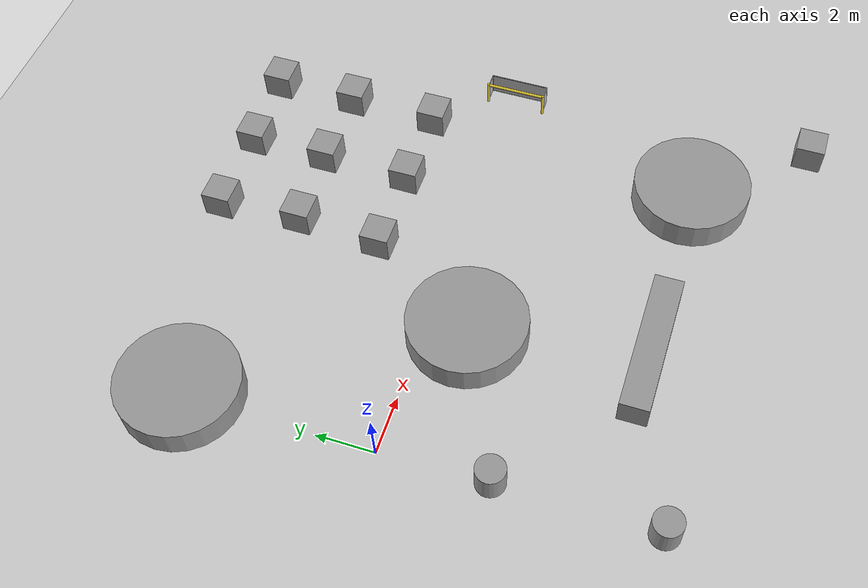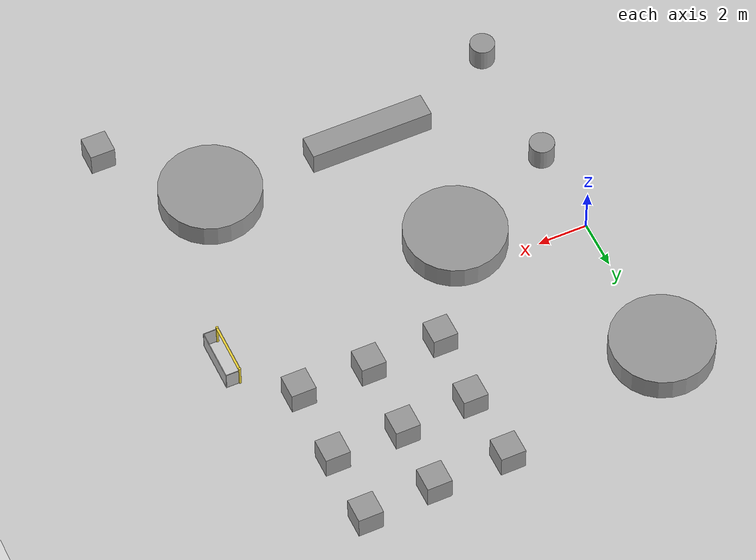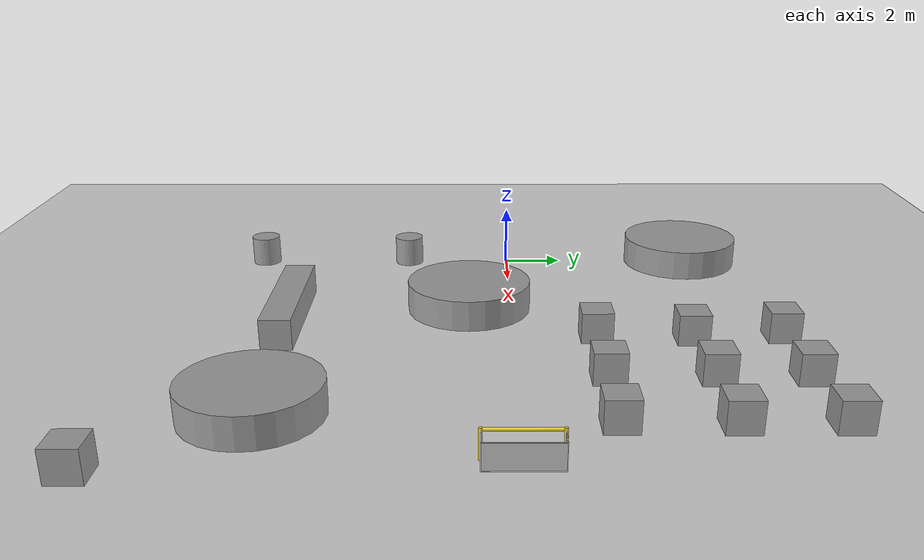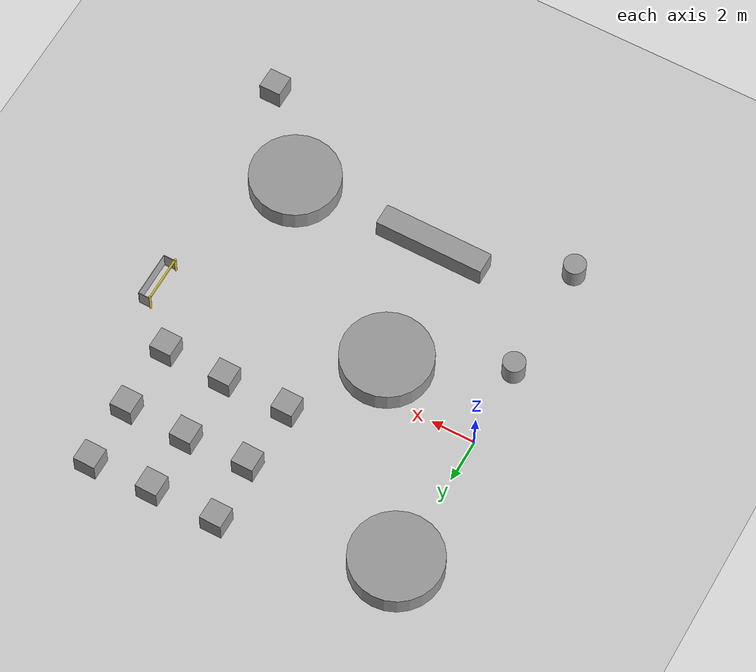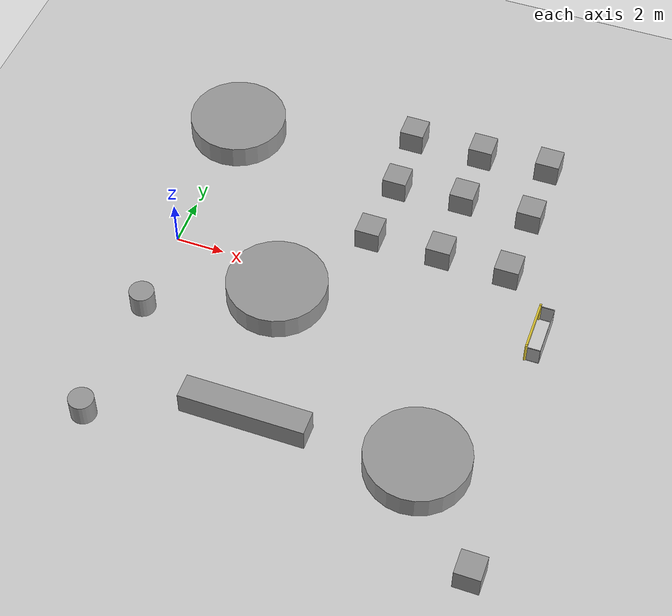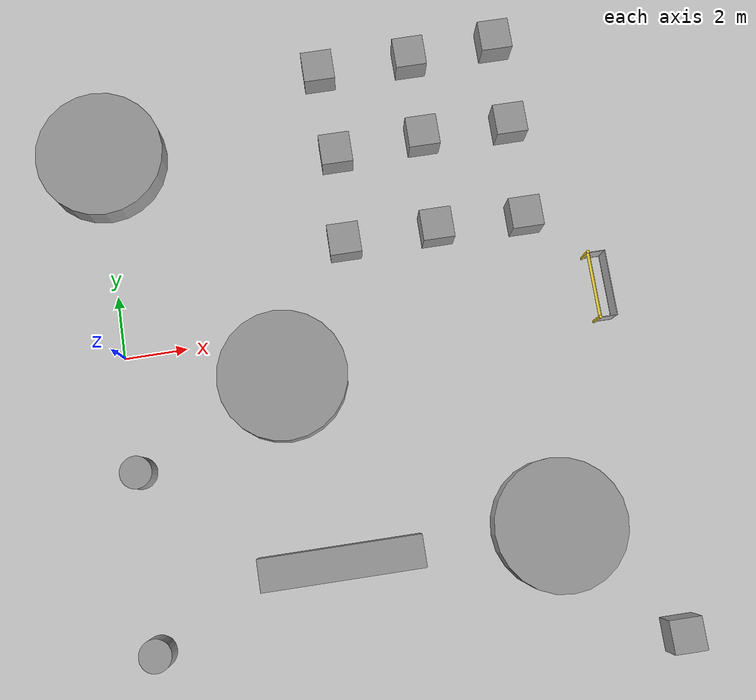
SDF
<sdf version="1.6">
 <world name="default">
  <model name="ground_plane">
   <static>1</static>
   <link name="link">
    <collision name="collision">
     <geometry><plane><normal>0 0 1</normal><size>100 100</size></plane></geometry>
     <surface>
      <contact><collide_bitmask>65535</collide_bitmask></contact>
      <friction><ode><mu>100</mu><mu2>50</mu2></ode></friction>
     </surface>
    </collision>
    <visual name="visual">
     <cast_shadows>0</cast_shadows>
     <geometry><plane><normal>0 0 1</normal><size>100 100</size></plane></geometry>
     <material>
      <script><uri>file://media/materials/scripts/gazebo.material</uri><name>Gazebo/Grey</name></script>
     </material>
    </visual>
   </link>
  </model>
  <model name="robocup_3d_goal_0">
   <static>1</static>
   <link name="left_post">
    <pose>0 1.05 0.45 0 -0 0</pose>
    <collision name="collision">
     <geometry><cylinder><radius>0.05</radius><length>0.9</length></cylinder></geometry>
    </collision>
    <visual name="visual">
     <geometry><cylinder><radius>0.05</radius><length>0.9</length></cylinder></geometry>
     <material>
      <script><uri>file://media/materials/scripts/gazebo.material</uri><name>Gazebo/ZincYellow</name></script>
     </material>
    </visual>
   </link>
   <link name="left_support_horiz_lower">
    <pose>0.3 1.05 0.01 0 -0 0</pose>
    <collision name="collision"><geometry><box><size>0.5 0.02 0.02</size></box></geometry></collision>
    <visual name="visual">
     <geometry><box><size>0.5 0.02 0.02</size></box></geometry>
     <material>
      <script><uri>file://media/materials/scripts/gazebo.material</uri><name>Gazebo/White</name></script>
     </material>
    </visual>
   </link>
   <link name="left_support_horiz_upper">
    <pose>0.3 1.05 0.79 0 -0 0</pose>
    <collision name="collision"><geometry><box><size>0.5 0.02 0.02</size></box></geometry></collision>
    <visual name="visual">
     <geometry><box><size>0.5 0.02 0.02</size></box></geometry>
     <material>
      <script><uri>file://media/materials/scripts/gazebo.material</uri><name>Gazebo/White</name></script>
     </material>
    </visual>
   </link>
   <link name="left_support_vertical">
    <pose>0.56 1.05 0.4 3.14159 1.57079 3.14159</pose>
    <collision name="collision"><geometry><box><size>0.8 0.02 0.02</size></box></geometry></collision>
    <visual name="visual">
     <geometry><box><size>0.8 0.02 0.02</size></box></geometry>
     <material>
      <script><uri>file://media/materials/scripts/gazebo.material</uri><name>Gazebo/White</name></script>
     </material>
    </visual>
   </link>
   <link name="right_support_horiz_lower">
    <pose>0.3 -1.05 0.01 0 -0 0</pose>
    <collision name="collision"><geometry><box><size>0.5 0.02 0.02</size></box></geometry></collision>
    <visual name="visual">
     <geometry><box><size>0.5 0.02 0.02</size></box></geometry>
     <material>
      <script><uri>file://media/materials/scripts/gazebo.material</uri><name>Gazebo/White</name></script>
     </material>
    </visual>
   </link>
   <link name="right_support_horiz_upper">
    <pose>0.3 -1.05 0.79 0 -0 0</pose>
    <collision name="collision"><geometry><box><size>0.5 0.02 0.02</size></box></geometry></collision>
    <visual name="visual">
     <geometry><box><size>0.5 0.02 0.02</size></box></geometry>
     <material>
      <script><uri>file://media/materials/scripts/gazebo.material</uri><name>Gazebo/White</name></script>
     </material>
    </visual>
   </link>
   <link name="right_support_vertical">
    <pose>0.56 -1.05 0.4 3.14159 1.57079 3.14159</pose>
    <collision name="collision"><geometry><box><size>0.8 0.02 0.02</size></box></geometry></collision>
    <visual name="visual">
     <geometry><box><size>0.8 0.02 0.02</size></box></geometry>
     <material>
      <script><uri>file://media/materials/scripts/gazebo.material</uri><name>Gazebo/White</name></script>
     </material>
    </visual>
   </link>
   <link name="center_support_horiz_lower">
    <pose>0.56 0 0.01 3.14159 1.57079 3.14159</pose>
    <collision name="collision"><geometry><box><size>0.02 2.08 0.02</size></box></geometry></collision>
    <visual name="visual">
     <geometry><box><size>0.02 2.08 0.02</size></box></geometry>
     <material>
      <script><uri>file://media/materials/scripts/gazebo.material</uri><name>Gazebo/White</name></script>
     </material>
    </visual>
   </link>
   <link name="center_support_horiz_upper">
    <pose>0.56 0 0.79 3.14159 1.57079 3.14159</pose>
    <collision name="collision"><geometry><box><size>0.02 2.08 0.02</size></box></geometry></collision>
    <visual name="visual">
     <geometry><box><size>0.02 2.08 0.02</size></box></geometry>
     <material>
      <script><uri>file://media/materials/scripts/gazebo.material</uri><name>Gazebo/White</name></script>
     </material>
    </visual>
   </link>
   <link name="right_post">
    <pose>0 -1.05 0.45 0 -0 0</pose>
    <collision name="collision">
     <geometry><cylinder><radius>0.05</radius><length>0.9</length></cylinder></geometry>
    </collision>
    <visual name="visual">
     <geometry><cylinder><radius>0.05</radius><length>0.9</length></cylinder></geometry>
     <material>
      <script><uri>file://media/materials/scripts/gazebo.material</uri><name>Gazebo/ZincYellow</name></script>
     </material>
    </visual>
   </link>
   <link name="crossbar">
    <pose>0 0 0.85 1.57 1.57 0</pose>
    <collision name="collision">
     <geometry><cylinder><radius>0.05</radius><length>2</length></cylinder></geometry>
    </collision>
    <visual name="visual">
     <geometry><cylinder><radius>0.05</radius><length>2</length></cylinder></geometry>
     <material>
      <script><uri>file://media/materials/scripts/gazebo.material</uri><name>Gazebo/ZincYellow</name></script>
     </material>
    </visual>
   </link>
   <link name="center_net">
    <pose>0.56 0 0.4 0 -0 0</pose>
    <collision name="collision"><geometry><box><size>0.01 2.1 0.8</size></box></geometry></collision>
    <visual name="visual">
     <geometry><box><size>0.01 2.1 0.8</size></box></geometry>
     <material>
      <script>
       <uri>model://robocup09_spl_field/materials/scripts/</uri>
       <uri>model://robocup09_spl_field/materials/textures/</uri>
       <name>RoboCup/Net</name>
      </script>
     </material>
    </visual>
   </link>
   <link name="left_net">
    <pose>0.3 1.05 0.4 0 -0 0</pose>
    <collision name="collision"><geometry><box><size>0.5 0.01 0.76</size></box></geometry></collision>
    <visual name="visual">
     <geometry><box><size>0.5 0.01 0.76</size></box></geometry>
     <material>
      <script>
       <uri>model://robocup09_spl_field/materials/scripts/</uri>
       <uri>model://robocup09_spl_field/materials/textures/</uri>
       <name>RoboCup/Net</name>
      </script>
     </material>
    </visual>
   </link>
   <link name="right_net">
    <pose>0.3 -1.05 0.4 0 -0 0</pose>
    <collision name="collision"><geometry><box><size>0.5 0.01 0.76</size></box></geometry></collision>
    <visual name="visual">
     <geometry><box><size>0.5 0.01 0.76</size></box></geometry>
     <material>
      <script>
       <uri>model://robocup09_spl_field/materials/scripts/</uri>
       <uri>model://robocup09_spl_field/materials/textures/</uri>
       <name>RoboCup/Net</name>
      </script>
     </material>
    </visual>
   </link>
   <pose>15 0 0 0 -0 0</pose>
  </model>
  <model name="unit_cylinder">
   <static>1</static>
   <pose>0.09734 6.55561 0.509996 2e-06 2e-06 0.001987</pose>
   <link name="link">
    <inertial>
     <mass>1</mass>
     <inertia><ixx>0.145833</ixx><ixy>0</ixy><ixz>0</ixz><iyy>0.145833</iyy><iyz>0</iyz><izz>0.125</izz></inertia>
    </inertial>
    <collision name="collision">
     <geometry><cylinder><radius>2.03912</radius><length>1</length></cylinder></geometry>
    </collision>
    <visual name="visual">
     <geometry><cylinder><radius>2.03912</radius><length>1</length></cylinder></geometry>
     <material>
      <script><name>Gazebo/Grey</name><uri>file://media/materials/scripts/gazebo.material</uri></script>
     </material>
    </visual>
   </link>
  </model>
  <model name="unit_cylinder_clone">
   <static>1</static>
   <pose>12.6062 -7.1594 0.509994 2e-06 -2e-06 -0.004995</pose>
   <link name="link">
    <inertial>
     <mass>1</mass>
     <inertia><ixx>0.145833</ixx><ixy>0</ixy><ixz>0</ixz><iyy>0.145833</iyy><iyz>0</iyz><izz>0.125</izz></inertia>
    </inertial>
    <collision name="collision">
     <geometry><cylinder><radius>2.03912</radius><length>1</length></cylinder></geometry>
    </collision>
    <visual name="visual">
     <geometry><cylinder><radius>2.03912</radius><length>1</length></cylinder></geometry>
     <material>
      <script><name>Gazebo/Grey</name><uri>file://media/materials/scripts/gazebo.material</uri></script>
     </material>
    </visual>
   </link>
  </model>
  <model name="unit_box">
   <static>1</static>
   <pose>13.328 8.66469 0.51 0 -0 0</pose>
   <link name="link">
    <inertial>
     <mass>1</mass>
     <inertia>
      <ixx>0.166667</ixx>
      <ixy>0</ixy>
      <ixz>0</ixz>
      <iyy>0.166667</iyy>
      <iyz>0</iyz>
      <izz>0.166667</izz>
     </inertia>
    </inertial>
    <collision name="collision"><geometry><box><size>1 1 1</size></box></geometry></collision>
    <visual name="visual">
     <geometry><box><size>1 1 1</size></box></geometry>
     <material>
      <script><name>Gazebo/Grey</name><uri>file://media/materials/scripts/gazebo.material</uri></script>
     </material>
    </visual>
   </link>
  </model>
  <model name="unit_box_clone">
   <static>1</static>
   <pose>13.328 5.76539 0.51 0 -0 0</pose>
   <link name="link">
    <inertial>
     <mass>1</mass>
     <inertia>
      <ixx>0.166667</ixx>
      <ixy>0</ixy>
      <ixz>0</ixz>
      <iyy>0.166667</iyy>
      <iyz>0</iyz>
      <izz>0.166667</izz>
     </inertia>
    </inertial>
    <collision name="collision"><geometry><box><size>1 1 1</size></box></geometry></collision>
    <visual name="visual">
     <geometry><box><size>1 1 1</size></box></geometry>
     <material>
      <script><name>Gazebo/Grey</name><uri>file://media/materials/scripts/gazebo.material</uri></script>
     </material>
    </visual>
   </link>
  </model>
  <model name="unit_box_clone_0">
   <static>1</static>
   <pose>13.2866 2.61759 0.51 0 -0 0</pose>
   <link name="link">
    <inertial>
     <mass>1</mass>
     <inertia>
      <ixx>0.166667</ixx>
      <ixy>0</ixy>
      <ixz>0</ixz>
      <iyy>0.166667</iyy>
      <iyz>0</iyz>
      <izz>0.166667</izz>
     </inertia>
    </inertial>
    <collision name="collision"><geometry><box><size>1 1 1</size></box></geometry></collision>
    <visual name="visual">
     <geometry><box><size>1 1 1</size></box></geometry>
     <material>
      <script><name>Gazebo/Grey</name><uri>file://media/materials/scripts/gazebo.material</uri></script>
     </material>
    </visual>
   </link>
  </model>
  <model name="unit_box_clone_1">
   <static>1</static>
   <pose>10.47 8.49907 0.51 0 -0 0</pose>
   <link name="link">
    <inertial>
     <mass>1</mass>
     <inertia>
      <ixx>0.166667</ixx>
      <ixy>0</ixy>
      <ixz>0</ixz>
      <iyy>0.166667</iyy>
      <iyz>0</iyz>
      <izz>0.166667</izz>
     </inertia>
    </inertial>
    <collision name="collision"><geometry><box><size>1 1 1</size></box></geometry></collision>
    <visual name="visual">
     <geometry><box><size>1 1 1</size></box></geometry>
     <material>
      <script><name>Gazebo/Grey</name><uri>file://media/materials/scripts/gazebo.material</uri></script>
     </material>
    </visual>
   </link>
  </model>
  <model name="unit_box_clone_2">
   <static>1</static>
   <pose>10.47 5.76539 0.51 0 -0 0</pose>
   <link name="link">
    <inertial>
     <mass>1</mass>
     <inertia>
      <ixx>0.166667</ixx>
      <ixy>0</ixy>
      <ixz>0</ixz>
      <iyy>0.166667</iyy>
      <iyz>0</iyz>
      <izz>0.166667</izz>
     </inertia>
    </inertial>
    <collision name="collision"><geometry><box><size>1 1 1</size></box></geometry></collision>
    <visual name="visual">
     <geometry><box><size>1 1 1</size></box></geometry>
     <material>
      <script><name>Gazebo/Grey</name><uri>file://media/materials/scripts/gazebo.material</uri></script>
     </material>
    </visual>
   </link>
  </model>
  <model name="unit_box_clone_3">
   <static>1</static>
   <pose>10.4286 2.6589 0.51 0 -0 0</pose>
   <link name="link">
    <inertial>
     <mass>1</mass>
     <inertia>
      <ixx>0.166667</ixx>
      <ixy>0</ixy>
      <ixz>0</ixz>
      <iyy>0.166667</iyy>
      <iyz>0</iyz>
      <izz>0.166667</izz>
     </inertia>
    </inertial>
    <collision name="collision"><geometry><box><size>1 1 1</size></box></geometry></collision>
    <visual name="visual">
     <geometry><box><size>1 1 1</size></box></geometry>
     <material>
      <script><name>Gazebo/Grey</name><uri>file://media/materials/scripts/gazebo.material</uri></script>
     </material>
    </visual>
   </link>
  </model>
  <model name="unit_box_clone_4">
   <static>1</static>
   <pose>7.44637 8.45763 0.51 0 -0 0</pose>
   <link name="link">
    <inertial>
     <mass>1</mass>
     <inertia>
      <ixx>0.166667</ixx>
      <ixy>0</ixy>
      <ixz>0</ixz>
      <iyy>0.166667</iyy>
      <iyz>0</iyz>
      <izz>0.166667</izz>
     </inertia>
    </inertial>
    <collision name="collision"><geometry><box><size>1 1 1</size></box></geometry></collision>
    <visual name="visual">
     <geometry><box><size>1 1 1</size></box></geometry>
     <material>
      <script><name>Gazebo/Grey</name><uri>file://media/materials/scripts/gazebo.material</uri></script>
     </material>
    </visual>
   </link>
  </model>
  <model name="unit_box_clone_5">
   <static>1</static>
   <pose>7.61205 5.59964 0.51 0 -0 0</pose>
   <link name="link">
    <inertial>
     <mass>1</mass>
     <inertia>
      <ixx>0.166667</ixx>
      <ixy>0</ixy>
      <ixz>0</ixz>
      <iyy>0.166667</iyy>
      <iyz>0</iyz>
      <izz>0.166667</izz>
     </inertia>
    </inertial>
    <collision name="collision"><geometry><box><size>1 1 1</size></box></geometry></collision>
    <visual name="visual">
     <geometry><box><size>1 1 1</size></box></geometry>
     <material>
      <script><name>Gazebo/Grey</name><uri>file://media/materials/scripts/gazebo.material</uri></script>
     </material>
    </visual>
   </link>
  </model>
  <model name="unit_box_clone_6">
   <static>1</static>
   <pose>7.44637 2.61759 0.51 0 -0 0</pose>
   <link name="link">
    <inertial>
     <mass>1</mass>
     <inertia>
      <ixx>0.166667</ixx>
      <ixy>0</ixy>
      <ixz>0</ixz>
      <iyy>0.166667</iyy>
      <iyz>0</iyz>
      <izz>0.166667</izz>
     </inertia>
    </inertial>
    <collision name="collision"><geometry><box><size>1 1 1</size></box></geometry></collision>
    <visual name="visual">
     <geometry><box><size>1 1 1</size></box></geometry>
     <material>
      <script><name>Gazebo/Grey</name><uri>file://media/materials/scripts/gazebo.material</uri></script>
     </material>
    </visual>
   </link>
  </model>
  <model name="unit_box_clone_7">
   <static>1</static>
   <pose>5.89654 -7.28143 0.507807 -0 0.000871 -1.7e-05</pose>
   <link name="link">
    <inertial>
     <mass>1</mass>
     <inertia>
      <ixx>0.166667</ixx>
      <ixy>0</ixy>
      <ixz>0</ixz>
      <iyy>0.166667</iyy>
      <iyz>0</iyz>
      <izz>0.166667</izz>
     </inertia>
    </inertial>
    <collision name="collision"><geometry><box><size>5.03596 1 1</size></box></geometry></collision>
    <visual name="visual">
     <geometry><box><size>5.03596 1 1</size></box></geometry>
     <material>
      <script><name>Gazebo/Grey</name><uri>file://media/materials/scripts/gazebo.material</uri></script>
     </material>
    </visual>
   </link>
  </model>
  <model name="unit_cylinder_0">
   <static>1</static>
   <pose>0.110731 -3.67964 0.51 0 -0 0</pose>
   <link name="link">
    <inertial>
     <mass>1</mass>
     <inertia><ixx>0.145833</ixx><ixy>0</ixy><ixz>0</ixz><iyy>0.145833</iyy><iyz>0</iyz><izz>0.125</izz></inertia>
    </inertial>
    <collision name="collision">
     <geometry><cylinder><radius>0.5</radius><length>1</length></cylinder></geometry>
    </collision>
    <visual name="visual">
     <geometry><cylinder><radius>0.5</radius><length>1</length></cylinder></geometry>
     <material>
      <script><name>Gazebo/Grey</name><uri>file://media/materials/scripts/gazebo.material</uri></script>
     </material>
    </visual>
   </link>
  </model>
  <model name="unit_cylinder_2">
   <static>1</static>
   <pose>0.069292 -9.10568 0.51 0 -0 0</pose>
   <link name="link">
    <inertial>
     <mass>1</mass>
     <inertia><ixx>0.145833</ixx><ixy>0</ixy><ixz>0</ixz><iyy>0.145833</iyy><iyz>0</iyz><izz>0.125</izz></inertia>
    </inertial>
    <collision name="collision">
     <geometry><cylinder><radius>0.5</radius><length>1</length></cylinder></geometry>
    </collision>
    <visual name="visual">
     <geometry><cylinder><radius>0.5</radius><length>1</length></cylinder></geometry>
     <material>
      <script><name>Gazebo/Grey</name><uri>file://media/materials/scripts/gazebo.material</uri></script>
     </material>
    </visual>
   </link>
  </model>
  <model name="unit_cylinder_clone_1">
   <static>1</static>
   <pose>4.91689 -1.38645 0.509996 2e-06 2e-06 0.001987</pose>
   <link name="link">
    <inertial>
     <mass>1</mass>
     <inertia><ixx>0.145833</ixx><ixy>0</ixy><ixz>0</ixz><iyy>0.145833</iyy><iyz>0</iyz><izz>0.125</izz></inertia>
    </inertial>
    <collision name="collision">
     <geometry><cylinder><radius>2.03912</radius><length>1</length></cylinder></geometry>
    </collision>
    <visual name="visual">
     <geometry><cylinder><radius>2.03912</radius><length>1</length></cylinder></geometry>
     <material>
      <script><name>Gazebo/Grey</name><uri>file://media/materials/scripts/gazebo.material</uri></script>
     </material>
    </visual>
   </link>
  </model>
  <model name="unit_box_2">
   <static>1</static>
   <pose>15.7277 -10.8714 0.51 0 -0 0</pose>
   <link name="link">
    <inertial>
     <mass>1</mass>
     <inertia>
      <ixx>0.166667</ixx>
      <ixy>0</ixy>
      <ixz>0</ixz>
      <iyy>0.166667</iyy>
      <iyz>0</iyz>
      <izz>0.166667</izz>
     </inertia>
    </inertial>
    <collision name="collision"><geometry><box><size>1 1 1</size></box></geometry></collision>
    <visual name="visual">
     <geometry><box><size>1 1 1</size></box></geometry>
     <material>
      <script><name>Gazebo/Grey</name><uri>file://media/materials/scripts/gazebo.material</uri></script>
     </material>
    </visual>
   </link>
  </model>
 </world>
</sdf>
